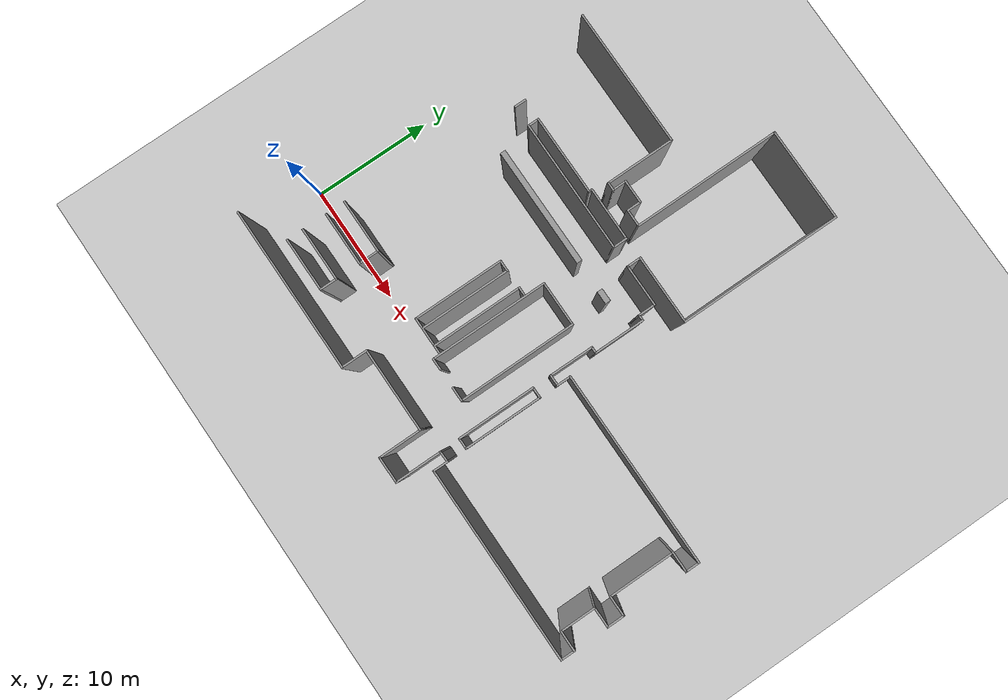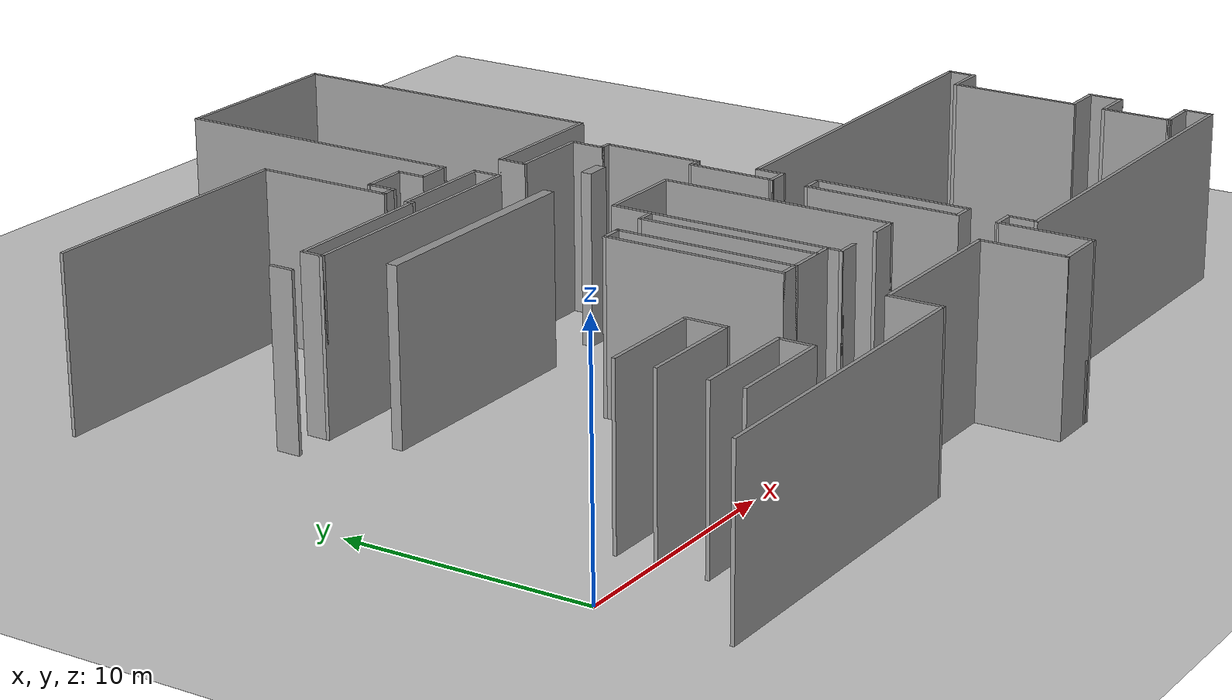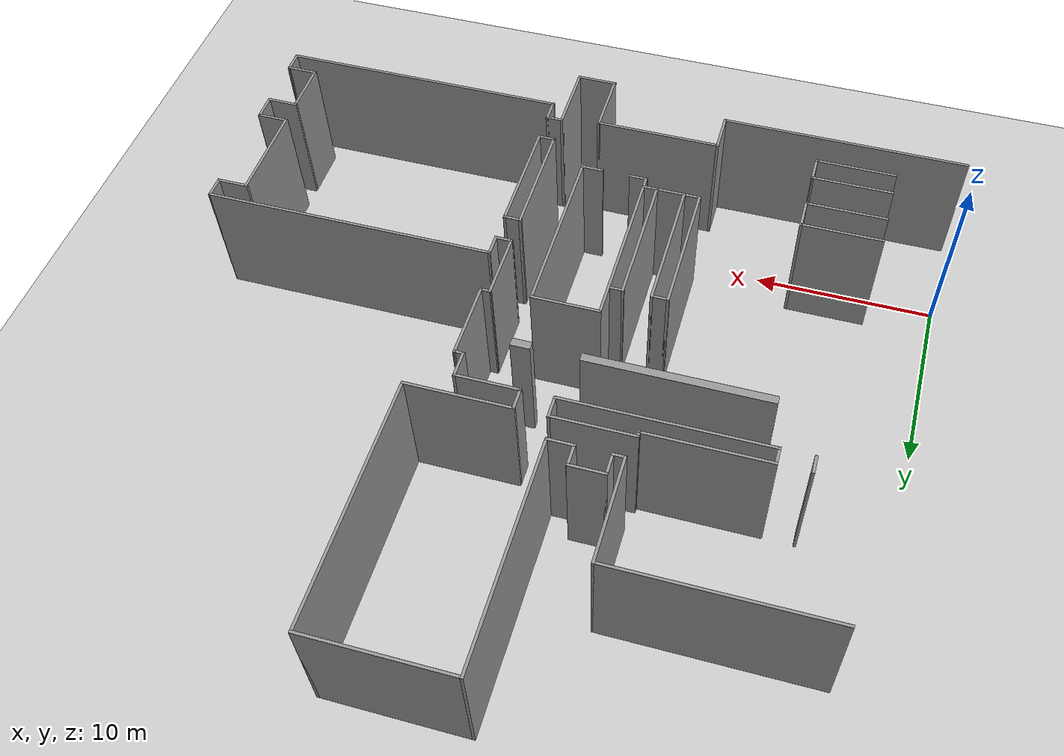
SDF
<sdf version="1.6">
 <world name="default">
  <model name="ground_plane">
   <static>1</static>
   <link name="link">
    <collision name="collision">
     <geometry><plane><normal>0 0 1</normal><size>100 100</size></plane></geometry>
     <surface>
      <contact><collide_bitmask>65535</collide_bitmask></contact>
      <friction><ode><mu>100</mu><mu2>50</mu2></ode></friction>
     </surface>
    </collision>
    <visual name="visual">
     <cast_shadows>0</cast_shadows>
     <geometry><plane><normal>0 0 1</normal><size>100 100</size></plane></geometry>
     <material>
      <script><uri>file://media/materials/scripts/gazebo.material</uri><name>Gazebo/Grey</name></script>
     </material>
    </visual>
   </link>
  </model>
  <model name="mmca">
   <pose>0.137385 4.31033 0 0 -0 0</pose>
   <link name="Wall_120">
    <collision name="Wall_120_Collision">
     <geometry><box><size>4.5 0.15 7</size></box></geometry>
     <pose>0 0 3.5 0 -0 0</pose>
    </collision>
    <visual name="Wall_120_Visual">
     <pose>0 0 3.5 0 -0 0</pose>
     <geometry><box><size>4.5 0.15 7</size></box></geometry>
     <material>
      <script><uri>file://media/materials/scripts/gazebo.material</uri><name>Gazebo/Grey</name></script>
      <ambient>1 1 1 1</ambient>
     </material>
     <meta><layer>0</layer></meta>
    </visual>
    <pose>5.7525 -4.3445 0 0 -0 0</pose>
   </link>
   <link name="Wall_121">
    <collision name="Wall_121_Collision">
     <geometry><box><size>1.75 0.15 7</size></box></geometry>
     <pose>0 0 3.5 0 -0 0</pose>
    </collision>
    <visual name="Wall_121_Visual">
     <pose>0 0 3.5 0 -0 0</pose>
     <geometry><box><size>1.75 0.15 7</size></box></geometry>
     <material>
      <script><uri>file://media/materials/scripts/gazebo.material</uri><name>Gazebo/Grey</name></script>
      <ambient>1 1 1 1</ambient>
     </material>
     <meta><layer>0</layer></meta>
    </visual>
    <pose>7.9275 -3.5445 0 0 -0 1.5708</pose>
   </link>
   <link name="Wall_122">
    <collision name="Wall_122_Collision">
     <geometry><box><size>4.5 0.15 7</size></box></geometry>
     <pose>0 0 3.5 0 -0 0</pose>
    </collision>
    <visual name="Wall_122_Visual">
     <pose>0 0 3.5 0 -0 0</pose>
     <geometry><box><size>4.5 0.15 7</size></box></geometry>
     <material>
      <script><uri>file://media/materials/scripts/gazebo.material</uri><name>Gazebo/Grey</name></script>
      <ambient>1 1 1 1</ambient>
     </material>
     <meta><layer>0</layer></meta>
    </visual>
    <pose>5.7525 -2.7445 0 0 -0 3.14159</pose>
   </link>
   <link name="Wall_124">
    <collision name="Wall_124_Collision">
     <geometry><box><size>4.5 0.15 7</size></box></geometry>
     <pose>0 0 3.5 0 -0 0</pose>
    </collision>
    <visual name="Wall_124_Visual">
     <pose>0 0 3.5 0 -0 0</pose>
     <geometry><box><size>4.5 0.15 7</size></box></geometry>
     <material>
      <script><uri>file://media/materials/scripts/gazebo.material</uri><name>Gazebo/Grey</name></script>
      <ambient>1 1 1 1</ambient>
     </material>
     <meta><layer>0</layer></meta>
    </visual>
    <pose>5.7375 -6.3445 0 0 -0 0</pose>
   </link>
   <link name="Wall_125">
    <collision name="Wall_125_Collision">
     <geometry><box><size>1.5 0.15 7</size></box></geometry>
     <pose>0 0 3.5 0 -0 0</pose>
    </collision>
    <visual name="Wall_125_Visual">
     <pose>0 0 3.5 0 -0 0</pose>
     <geometry><box><size>1.5 0.15 7</size></box></geometry>
     <material>
      <script><uri>file://media/materials/scripts/gazebo.material</uri><name>Gazebo/Grey</name></script>
      <ambient>1 1 1 1</ambient>
     </material>
     <meta><layer>0</layer></meta>
    </visual>
    <pose>7.9125 -7.0195 0 0 -0 -1.5708</pose>
   </link>
   <link name="Wall_126">
    <collision name="Wall_126_Collision">
     <geometry><box><size>4.5 0.15 7</size></box></geometry>
     <pose>0 0 3.5 0 -0 0</pose>
    </collision>
    <visual name="Wall_126_Visual">
     <pose>0 0 3.5 0 -0 0</pose>
     <geometry><box><size>4.5 0.15 7</size></box></geometry>
     <material>
      <script><uri>file://media/materials/scripts/gazebo.material</uri><name>Gazebo/Grey</name></script>
      <ambient>1 1 1 1</ambient>
     </material>
     <meta><layer>0</layer></meta>
    </visual>
    <pose>5.7375 -7.6945 0 0 -0 3.14159</pose>
   </link>
   <link name="Wall_133">
    <collision name="Wall_133_Collision">
     <geometry><box><size>9.80032 0.45 7</size></box></geometry>
     <pose>0 0 3.5 0 -0 0</pose>
    </collision>
    <visual name="Wall_133_Visual">
     <pose>0 0 3.5 0 -0 0</pose>
     <geometry><box><size>9.80032 0.45 7</size></box></geometry>
     <material>
      <script><uri>file://media/materials/scripts/gazebo.material</uri><name>Gazebo/Grey</name></script>
      <ambient>1 1 1 1</ambient>
     </material>
     <meta><layer>0</layer></meta>
    </visual>
    <pose>11.9185 8.7625 0 0 -0 0</pose>
   </link>
   <link name="Wall_135">
    <collision name="Wall_135_Collision">
     <geometry><box><size>1.05 0.45 7</size></box></geometry>
     <pose>0 0 3.5 0 -0 0</pose>
    </collision>
    <visual name="Wall_135_Visual">
     <pose>0 0 3.5 0 -0 0</pose>
     <geometry><box><size>1.05 0.45 7</size></box></geometry>
     <material>
      <script><uri>file://media/materials/scripts/gazebo.material</uri><name>Gazebo/Grey</name></script>
      <ambient>1 1 1 1</ambient>
     </material>
     <meta><layer>0</layer></meta>
    </visual>
    <pose>19.8635 8.7725 0 0 -0 0</pose>
   </link>
   <link name="Wall_148">
    <collision name="Wall_148_Collision">
     <geometry><box><size>1 0.15 7</size></box></geometry>
     <pose>0 0 3.5 0 -0 0</pose>
    </collision>
    <visual name="Wall_148_Visual">
     <pose>0 0 3.5 0 -0 0</pose>
     <geometry><box><size>1 0.15 7</size></box></geometry>
     <material>
      <script><uri>file://media/materials/scripts/gazebo.material</uri><name>Gazebo/Grey</name></script>
      <ambient>1 1 1 1</ambient>
     </material>
     <meta><layer>0</layer></meta>
    </visual>
    <pose>22.8155 -7.0925 0 0 -0 0</pose>
   </link>
   <link name="Wall_149">
    <collision name="Wall_149_Collision">
     <geometry><box><size>1.25 0.15 7</size></box></geometry>
     <pose>0 0 3.5 0 -0 0</pose>
    </collision>
    <visual name="Wall_149_Visual">
     <pose>0 0 3.5 0 -0 0</pose>
     <geometry><box><size>1.25 0.15 7</size></box></geometry>
     <material>
      <script><uri>file://media/materials/scripts/gazebo.material</uri><name>Gazebo/Grey</name></script>
      <ambient>1 1 1 1</ambient>
     </material>
     <meta><layer>0</layer></meta>
    </visual>
    <pose>23.2405 -7.6425 0 0 -0 -1.5708</pose>
   </link>
   <link name="Wall_152">
    <collision name="Wall_152_Collision">
     <geometry><box><size>1 0.15 7</size></box></geometry>
     <pose>0 0 3.5 0 -0 0</pose>
    </collision>
    <visual name="Wall_152_Visual">
     <pose>0 0 3.5 0 -0 0</pose>
     <geometry><box><size>1 0.15 7</size></box></geometry>
     <material>
      <script><uri>file://media/materials/scripts/gazebo.material</uri><name>Gazebo/Grey</name></script>
      <ambient>1 1 1 1</ambient>
     </material>
     <meta><layer>0</layer></meta>
    </visual>
    <pose>22.8035 -5.4755 0 0 -0 0</pose>
   </link>
   <link name="Wall_154">
    <collision name="Wall_154_Collision">
     <geometry><box><size>6.5 0.15 7</size></box></geometry>
     <pose>0 0 3.5 0 -0 0</pose>
    </collision>
    <visual name="Wall_154_Visual">
     <pose>0 0 3.5 0 -0 0</pose>
     <geometry><box><size>6.5 0.15 7</size></box></geometry>
     <material>
      <script><uri>file://media/materials/scripts/gazebo.material</uri><name>Gazebo/Grey</name></script>
      <ambient>1 1 1 1</ambient>
     </material>
     <meta><layer>0</layer></meta>
    </visual>
    <pose>23.2285 -2.3005 0 0 -0 1.5708</pose>
   </link>
   <link name="Wall_155">
    <collision name="Wall_155_Collision">
     <geometry><box><size>1 0.15 7</size></box></geometry>
     <pose>0 0 3.5 0 -0 0</pose>
    </collision>
    <visual name="Wall_155_Visual">
     <pose>0 0 3.5 0 -0 0</pose>
     <geometry><box><size>1 0.15 7</size></box></geometry>
     <material>
      <script><uri>file://media/materials/scripts/gazebo.material</uri><name>Gazebo/Grey</name></script>
      <ambient>1 1 1 1</ambient>
     </material>
     <meta><layer>0</layer></meta>
    </visual>
    <pose>22.8035 0.874499 0 0 -0 3.14159</pose>
   </link>
   <link name="Wall_157">
    <collision name="Wall_157_Collision">
     <geometry><box><size>1 0.15 7</size></box></geometry>
     <pose>0 0 3.5 0 -0 0</pose>
    </collision>
    <visual name="Wall_157_Visual">
     <pose>0 0 3.5 0 -0 0</pose>
     <geometry><box><size>1 0.15 7</size></box></geometry>
     <material>
      <script><uri>file://media/materials/scripts/gazebo.material</uri><name>Gazebo/Grey</name></script>
      <ambient>1 1 1 1</ambient>
     </material>
     <meta><layer>0</layer></meta>
    </visual>
    <pose>22.8015 2.4075 0 0 -0 0</pose>
   </link>
   <link name="Wall_161">
    <collision name="Wall_161_Collision">
     <geometry><box><size>1.75 0.15 7</size></box></geometry>
     <pose>0 0 3.5 0 -0 0</pose>
    </collision>
    <visual name="Wall_161_Visual">
     <pose>0 0 3.5 0 -0 0</pose>
     <geometry><box><size>1.75 0.15 7</size></box></geometry>
     <material>
      <script><uri>file://media/materials/scripts/gazebo.material</uri><name>Gazebo/Grey</name></script>
      <ambient>1 1 1 1</ambient>
     </material>
     <meta><layer>0</layer></meta>
    </visual>
    <pose>38.2765 2.4075 0 0 -0 3.14159</pose>
   </link>
   <link name="Wall_162">
    <collision name="Wall_162_Collision">
     <geometry><box><size>5.5 0.15 7</size></box></geometry>
     <pose>0 0 3.5 0 -0 0</pose>
    </collision>
    <visual name="Wall_162_Visual">
     <pose>0 0 3.5 0 -0 0</pose>
     <geometry><box><size>5.5 0.15 7</size></box></geometry>
     <material>
      <script><uri>file://media/materials/scripts/gazebo.material</uri><name>Gazebo/Grey</name></script>
      <ambient>1 1 1 1</ambient>
     </material>
     <meta><layer>0</layer></meta>
    </visual>
    <pose>37.4765 -0.267501 0 0 -0 -1.5708</pose>
   </link>
   <link name="Wall_163">
    <collision name="Wall_163_Collision">
     <geometry><box><size>1.75 0.15 7</size></box></geometry>
     <pose>0 0 3.5 0 -0 0</pose>
    </collision>
    <visual name="Wall_163_Visual">
     <pose>0 0 3.5 0 -0 0</pose>
     <geometry><box><size>1.75 0.15 7</size></box></geometry>
     <material>
      <script><uri>file://media/materials/scripts/gazebo.material</uri><name>Gazebo/Grey</name></script>
      <ambient>1 1 1 1</ambient>
     </material>
     <meta><layer>0</layer></meta>
    </visual>
    <pose>38.2765 -2.9425 0 0 -0 0</pose>
   </link>
   <link name="Wall_164">
    <collision name="Wall_164_Collision">
     <geometry><box><size>1.5 0.15 7</size></box></geometry>
     <pose>0 0 3.5 0 -0 0</pose>
    </collision>
    <visual name="Wall_164_Visual">
     <pose>0 0 3.5 0 -0 0</pose>
     <geometry><box><size>1.5 0.15 7</size></box></geometry>
     <material>
      <script><uri>file://media/materials/scripts/gazebo.material</uri><name>Gazebo/Grey</name></script>
      <ambient>1 1 1 1</ambient>
     </material>
     <meta><layer>0</layer></meta>
    </visual>
    <pose>39.0765 -3.6175 0 0 -0 -1.5708</pose>
   </link>
   <link name="Wall_165">
    <collision name="Wall_165_Collision">
     <geometry><box><size>1.75 0.15 7</size></box></geometry>
     <pose>0 0 3.5 0 -0 0</pose>
    </collision>
    <visual name="Wall_165_Visual">
     <pose>0 0 3.5 0 -0 0</pose>
     <geometry><box><size>1.75 0.15 7</size></box></geometry>
     <material>
      <script><uri>file://media/materials/scripts/gazebo.material</uri><name>Gazebo/Grey</name></script>
      <ambient>1 1 1 1</ambient>
     </material>
     <meta><layer>0</layer></meta>
    </visual>
    <pose>38.2765 -4.2925 0 0 -0 3.14159</pose>
   </link>
   <link name="Wall_166">
    <collision name="Wall_166_Collision">
     <geometry><box><size>3 0.15 7</size></box></geometry>
     <pose>0 0 3.5 0 -0 0</pose>
    </collision>
    <visual name="Wall_166_Visual">
     <pose>0 0 3.5 0 -0 0</pose>
     <geometry><box><size>3 0.15 7</size></box></geometry>
     <material>
      <script><uri>file://media/materials/scripts/gazebo.material</uri><name>Gazebo/Grey</name></script>
      <ambient>1 1 1 1</ambient>
     </material>
     <meta><layer>0</layer></meta>
    </visual>
    <pose>37.4765 -5.7175 0 0 -0 -1.5708</pose>
   </link>
   <link name="Wall_167">
    <collision name="Wall_167_Collision">
     <geometry><box><size>1.75 0.15 7</size></box></geometry>
     <pose>0 0 3.5 0 -0 0</pose>
    </collision>
    <visual name="Wall_167_Visual">
     <pose>0 0 3.5 0 -0 0</pose>
     <geometry><box><size>1.75 0.15 7</size></box></geometry>
     <material>
      <script><uri>file://media/materials/scripts/gazebo.material</uri><name>Gazebo/Grey</name></script>
      <ambient>1 1 1 1</ambient>
     </material>
     <meta><layer>0</layer></meta>
    </visual>
    <pose>38.2765 -7.1425 0 0 -0 0</pose>
   </link>
   <link name="Wall_168">
    <collision name="Wall_168_Collision">
     <geometry><box><size>1.25 0.15 7</size></box></geometry>
     <pose>0 0 3.5 0 -0 0</pose>
    </collision>
    <visual name="Wall_168_Visual">
     <pose>0 0 3.5 0 -0 0</pose>
     <geometry><box><size>1.25 0.15 7</size></box></geometry>
     <material>
      <script><uri>file://media/materials/scripts/gazebo.material</uri><name>Gazebo/Grey</name></script>
      <ambient>1 1 1 1</ambient>
     </material>
     <meta><layer>0</layer></meta>
    </visual>
    <pose>39.0765 -7.6925 0 0 -0 -1.5708</pose>
   </link>
   <link name="Wall_169">
    <collision name="Wall_169_Collision">
     <geometry><box><size>16 0.15 7</size></box></geometry>
     <pose>0 0 3.5 0 -0 0</pose>
    </collision>
    <visual name="Wall_169_Visual">
     <pose>0 0 3.5 0 -0 0</pose>
     <geometry><box><size>16 0.15 7</size></box></geometry>
     <material>
      <script><uri>file://media/materials/scripts/gazebo.material</uri><name>Gazebo/Grey</name></script>
      <ambient>1 1 1 1</ambient>
     </material>
     <meta><layer>0</layer></meta>
    </visual>
    <pose>31.1515 -8.2425 0 0 -0 3.14159</pose>
   </link>
   <link name="Wall_172">
    <collision name="Wall_172_Collision">
     <geometry><box><size>6.5 0.15 7</size></box></geometry>
     <pose>0 0 3.5 0 -0 0</pose>
    </collision>
    <visual name="Wall_172_Visual">
     <pose>0 0 3.5 0 -0 0</pose>
     <geometry><box><size>6.5 0.15 7</size></box></geometry>
     <material>
      <script><uri>file://media/materials/scripts/gazebo.material</uri><name>Gazebo/Grey</name></script>
      <ambient>1 1 1 1</ambient>
     </material>
     <meta><layer>0</layer></meta>
    </visual>
    <pose>22.3785 -2.3005 0 0 -0 -1.5708</pose>
   </link>
   <link name="Wall_174">
    <collision name="Wall_174_Collision">
     <geometry><box><size>3.93426 0.15 7</size></box></geometry>
     <pose>0 0 3.5 0 -0 0</pose>
    </collision>
    <visual name="Wall_174_Visual">
     <pose>0 0 3.5 0 -0 0</pose>
     <geometry><box><size>3.93426 0.15 7</size></box></geometry>
     <material>
      <script><uri>file://media/materials/scripts/gazebo.material</uri><name>Gazebo/Grey</name></script>
      <ambient>1 1 1 1</ambient>
     </material>
     <meta><layer>0</layer></meta>
    </visual>
    <pose>22.391 -8.9845 0 0 -0 -1.57053</pose>
   </link>
   <link name="Wall_176">
    <collision name="Wall_176_Collision">
     <geometry><box><size>3.71588 0.15 7</size></box></geometry>
     <pose>0 0 3.5 0 -0 0</pose>
    </collision>
    <visual name="Wall_176_Visual">
     <pose>0 0 3.5 0 -0 0</pose>
     <geometry><box><size>3.71588 0.15 7</size></box></geometry>
     <material>
      <script><uri>file://media/materials/scripts/gazebo.material</uri><name>Gazebo/Grey</name></script>
      <ambient>1 1 1 1</ambient>
     </material>
     <meta><layer>0</layer></meta>
    </visual>
    <pose>22.384 4.1905 0 0 -0 -1.575</pose>
   </link>
   <link name="Wall_178">
    <collision name="Wall_178_Collision">
     <geometry><box><size>1.25 0.15 7</size></box></geometry>
     <pose>0 0 3.5 0 -0 0</pose>
    </collision>
    <visual name="Wall_178_Visual">
     <pose>0 0 3.5 0 -0 0</pose>
     <geometry><box><size>1.25 0.15 7</size></box></geometry>
     <material>
      <script><uri>file://media/materials/scripts/gazebo.material</uri><name>Gazebo/Grey</name></script>
      <ambient>1 1 1 1</ambient>
     </material>
     <meta><layer>0</layer></meta>
    </visual>
    <pose>23.2265 2.9575 0 0 -0 1.5708</pose>
   </link>
   <link name="Wall_179">
    <collision name="Wall_179_Collision">
     <geometry><box><size>16 0.15 7</size></box></geometry>
     <pose>0 0 3.5 0 -0 0</pose>
    </collision>
    <visual name="Wall_179_Visual">
     <pose>0 0 3.5 0 -0 0</pose>
     <geometry><box><size>16 0.15 7</size></box></geometry>
     <material>
      <script><uri>file://media/materials/scripts/gazebo.material</uri><name>Gazebo/Grey</name></script>
      <ambient>1 1 1 1</ambient>
     </material>
     <meta><layer>0</layer></meta>
    </visual>
    <pose>31.1515 3.5075 0 0 -0 0</pose>
   </link>
   <link name="Wall_180">
    <collision name="Wall_180_Collision">
     <geometry><box><size>1.25 0.15 7</size></box></geometry>
     <pose>0 0 3.5 0 -0 0</pose>
    </collision>
    <visual name="Wall_180_Visual">
     <pose>0 0 3.5 0 -0 0</pose>
     <geometry><box><size>1.25 0.15 7</size></box></geometry>
     <material>
      <script><uri>file://media/materials/scripts/gazebo.material</uri><name>Gazebo/Grey</name></script>
      <ambient>1 1 1 1</ambient>
     </material>
     <meta><layer>0</layer></meta>
    </visual>
    <pose>39.0765 2.9575 0 0 -0 -1.5708</pose>
   </link>
   <link name="Wall_184">
    <collision name="Wall_184_Collision">
     <geometry><box><size>1 0.15 7</size></box></geometry>
     <pose>0 0 3.5 0 -0 0</pose>
    </collision>
    <visual name="Wall_184_Visual">
     <pose>0 0 3.5 0 -0 0</pose>
     <geometry><box><size>1 0.15 7</size></box></geometry>
     <material>
      <script><uri>file://media/materials/scripts/gazebo.material</uri><name>Gazebo/Grey</name></script>
      <ambient>1 1 1 1</ambient>
     </material>
     <meta><layer>0</layer></meta>
    </visual>
    <pose>4.7735 11.8515 0 0 -0 1.5708</pose>
   </link>
   <link name="Wall_187">
    <collision name="Wall_187_Collision">
     <geometry><box><size>11.5 0.15 7</size></box></geometry>
     <pose>0 0 3.5 0 -0 0</pose>
    </collision>
    <visual name="Wall_187_Visual">
     <pose>0 0 3.5 0 -0 0</pose>
     <geometry><box><size>11.5 0.15 7</size></box></geometry>
     <material>
      <script><uri>file://media/materials/scripts/gazebo.material</uri><name>Gazebo/Grey</name></script>
      <ambient>1 1 1 1</ambient>
     </material>
     <meta><layer>0</layer></meta>
    </visual>
    <pose>7.5985 19.3765 0 0 -0 0</pose>
   </link>
   <link name="Wall_188">
    <collision name="Wall_188_Collision">
     <geometry><box><size>5.75 0.15 7</size></box></geometry>
     <pose>0 0 3.5 0 -0 0</pose>
    </collision>
    <visual name="Wall_188_Visual">
     <pose>0 0 3.5 0 -0 0</pose>
     <geometry><box><size>5.75 0.15 7</size></box></geometry>
     <material>
      <script><uri>file://media/materials/scripts/gazebo.material</uri><name>Gazebo/Grey</name></script>
      <ambient>1 1 1 1</ambient>
     </material>
     <meta><layer>0</layer></meta>
    </visual>
    <pose>13.2735 16.5765 0 0 -0 -1.5708</pose>
   </link>
   <link name="Wall_189">
    <collision name="Wall_189_Collision">
     <geometry><box><size>0.75 0.15 7</size></box></geometry>
     <pose>0 0 3.5 0 -0 0</pose>
    </collision>
    <visual name="Wall_189_Visual">
     <pose>0 0 3.5 0 -0 0</pose>
     <geometry><box><size>0.75 0.15 7</size></box></geometry>
     <material>
      <script><uri>file://media/materials/scripts/gazebo.material</uri><name>Gazebo/Grey</name></script>
      <ambient>1 1 1 1</ambient>
     </material>
     <meta><layer>0</layer></meta>
    </visual>
    <pose>13.5735 13.7765 0 0 -0 0</pose>
   </link>
   <link name="Wall_190">
    <collision name="Wall_190_Collision">
     <geometry><box><size>1.25 0.15 7</size></box></geometry>
     <pose>0 0 3.5 0 -0 0</pose>
    </collision>
    <visual name="Wall_190_Visual">
     <pose>0 0 3.5 0 -0 0</pose>
     <geometry><box><size>1.25 0.15 7</size></box></geometry>
     <material>
      <script><uri>file://media/materials/scripts/gazebo.material</uri><name>Gazebo/Grey</name></script>
      <ambient>1 1 1 1</ambient>
     </material>
     <meta><layer>0</layer></meta>
    </visual>
    <pose>13.8735 14.3265 0 0 -0 1.5708</pose>
   </link>
   <link name="Wall_191">
    <collision name="Wall_191_Collision">
     <geometry><box><size>2 0.15 7</size></box></geometry>
     <pose>0 0 3.5 0 -0 0</pose>
    </collision>
    <visual name="Wall_191_Visual">
     <pose>0 0 3.5 0 -0 0</pose>
     <geometry><box><size>2 0.15 7</size></box></geometry>
     <material>
      <script><uri>file://media/materials/scripts/gazebo.material</uri><name>Gazebo/Grey</name></script>
      <ambient>1 1 1 1</ambient>
     </material>
     <meta><layer>0</layer></meta>
    </visual>
    <pose>14.7985 14.8765 0 0 -0 0</pose>
   </link>
   <link name="Wall_192">
    <collision name="Wall_192_Collision">
     <geometry><box><size>1.25 0.15 7</size></box></geometry>
     <pose>0 0 3.5 0 -0 0</pose>
    </collision>
    <visual name="Wall_192_Visual">
     <pose>0 0 3.5 0 -0 0</pose>
     <geometry><box><size>1.25 0.15 7</size></box></geometry>
     <material>
      <script><uri>file://media/materials/scripts/gazebo.material</uri><name>Gazebo/Grey</name></script>
      <ambient>1 1 1 1</ambient>
     </material>
     <meta><layer>0</layer></meta>
    </visual>
    <pose>15.7235 14.3265 0 0 -0 -1.5708</pose>
   </link>
   <link name="Wall_193">
    <collision name="Wall_193_Collision">
     <geometry><box><size>1.5 0.15 7</size></box></geometry>
     <pose>0 0 3.5 0 -0 0</pose>
    </collision>
    <visual name="Wall_193_Visual">
     <pose>0 0 3.5 0 -0 0</pose>
     <geometry><box><size>1.5 0.15 7</size></box></geometry>
     <material>
      <script><uri>file://media/materials/scripts/gazebo.material</uri><name>Gazebo/Grey</name></script>
      <ambient>1 1 1 1</ambient>
     </material>
     <meta><layer>0</layer></meta>
    </visual>
    <pose>16.3985 13.7765 0 0 -0 0</pose>
   </link>
   <link name="Wall_194">
    <collision name="Wall_194_Collision">
     <geometry><box><size>12.25 0.15 7</size></box></geometry>
     <pose>0 0 3.5 0 -0 0</pose>
    </collision>
    <visual name="Wall_194_Visual">
     <pose>0 0 3.5 0 -0 0</pose>
     <geometry><box><size>12.25 0.15 7</size></box></geometry>
     <material>
      <script><uri>file://media/materials/scripts/gazebo.material</uri><name>Gazebo/Grey</name></script>
      <ambient>1 1 1 1</ambient>
     </material>
     <meta><layer>0</layer></meta>
    </visual>
    <pose>17.0735 19.8265 0 0 -0 1.5708</pose>
   </link>
   <link name="Wall_195">
    <collision name="Wall_195_Collision">
     <geometry><box><size>7.75 0.15 7</size></box></geometry>
     <pose>0 0 3.5 0 -0 0</pose>
    </collision>
    <visual name="Wall_195_Visual">
     <pose>0 0 3.5 0 -0 0</pose>
     <geometry><box><size>7.75 0.15 7</size></box></geometry>
     <material>
      <script><uri>file://media/materials/scripts/gazebo.material</uri><name>Gazebo/Grey</name></script>
      <ambient>1 1 1 1</ambient>
     </material>
     <meta><layer>0</layer></meta>
    </visual>
    <pose>20.8735 25.8765 0 0 -0 0</pose>
   </link>
   <link name="Wall_196">
    <collision name="Wall_196_Collision">
     <geometry><box><size>13.5 0.15 7</size></box></geometry>
     <pose>0 0 3.5 0 -0 0</pose>
    </collision>
    <visual name="Wall_196_Visual">
     <pose>0 0 3.5 0 -0 0</pose>
     <geometry><box><size>13.5 0.15 7</size></box></geometry>
     <material>
      <script><uri>file://media/materials/scripts/gazebo.material</uri><name>Gazebo/Grey</name></script>
      <ambient>1 1 1 1</ambient>
     </material>
     <meta><layer>0</layer></meta>
    </visual>
    <pose>24.6735 19.2015 0 0 -0 -1.5708</pose>
   </link>
   <link name="Wall_197">
    <collision name="Wall_197_Collision">
     <geometry><box><size>5.75 0.15 7</size></box></geometry>
     <pose>0 0 3.5 0 -0 0</pose>
    </collision>
    <visual name="Wall_197_Visual">
     <pose>0 0 3.5 0 -0 0</pose>
     <geometry><box><size>5.75 0.15 7</size></box></geometry>
     <material>
      <script><uri>file://media/materials/scripts/gazebo.material</uri><name>Gazebo/Grey</name></script>
      <ambient>1 1 1 1</ambient>
     </material>
     <meta><layer>0</layer></meta>
    </visual>
    <pose>21.8735 12.5265 0 0 -0 3.14159</pose>
   </link>
   <link name="Wall_198">
    <collision name="Wall_198_Collision">
     <geometry><box><size>1.25 0.15 7</size></box></geometry>
     <pose>0 0 3.5 0 -0 0</pose>
    </collision>
    <visual name="Wall_198_Visual">
     <pose>0 0 3.5 0 -0 0</pose>
     <geometry><box><size>1.25 0.15 7</size></box></geometry>
     <material>
      <script><uri>file://media/materials/scripts/gazebo.material</uri><name>Gazebo/Grey</name></script>
      <ambient>1 1 1 1</ambient>
     </material>
     <meta><layer>0</layer></meta>
    </visual>
    <pose>19.0735 11.9765 0 0 -0 -1.5708</pose>
   </link>
   <link name="Wall_199">
    <collision name="Wall_199_Collision">
     <geometry><box><size>3.5 0.15 7</size></box></geometry>
     <pose>0 0 3.5 0 -0 0</pose>
    </collision>
    <visual name="Wall_199_Visual">
     <pose>0 0 3.5 0 -0 0</pose>
     <geometry><box><size>3.5 0.15 7</size></box></geometry>
     <material>
      <script><uri>file://media/materials/scripts/gazebo.material</uri><name>Gazebo/Grey</name></script>
      <ambient>1 1 1 1</ambient>
     </material>
     <meta><layer>0</layer></meta>
    </visual>
    <pose>20.7485 11.4265 0 0 -0 0</pose>
   </link>
   <link name="Wall_202">
    <collision name="Wall_202_Collision">
     <geometry><box><size>11 0.15 7</size></box></geometry>
     <pose>0 0 3.5 0 -0 0</pose>
    </collision>
    <visual name="Wall_202_Visual">
     <pose>0 0 3.5 0 -0 0</pose>
     <geometry><box><size>11 0.15 7</size></box></geometry>
     <material>
      <script><uri>file://media/materials/scripts/gazebo.material</uri><name>Gazebo/Grey</name></script>
      <ambient>1 1 1 1</ambient>
     </material>
     <meta><layer>0</layer></meta>
    </visual>
    <pose>11.9225 11.4155 0 0 -0 0</pose>
   </link>
   <link name="Wall_203">
    <collision name="Wall_203_Collision">
     <geometry><box><size>1.25 0.15 7</size></box></geometry>
     <pose>0 0 3.5 0 -0 0</pose>
    </collision>
    <visual name="Wall_203_Visual">
     <pose>0 0 3.5 0 -0 0</pose>
     <geometry><box><size>1.25 0.15 7</size></box></geometry>
     <material>
      <script><uri>file://media/materials/scripts/gazebo.material</uri><name>Gazebo/Grey</name></script>
      <ambient>1 1 1 1</ambient>
     </material>
     <meta><layer>0</layer></meta>
    </visual>
    <pose>17.3475 11.9655 0 0 -0 1.5708</pose>
   </link>
   <link name="Wall_206">
    <collision name="Wall_206_Collision">
     <geometry><box><size>1 0.15 7</size></box></geometry>
     <pose>0 0 3.5 0 -0 0</pose>
    </collision>
    <visual name="Wall_206_Visual">
     <pose>0 0 3.5 0 -0 0</pose>
     <geometry><box><size>1 0.15 7</size></box></geometry>
     <material>
      <script><uri>file://media/materials/scripts/gazebo.material</uri><name>Gazebo/Grey</name></script>
      <ambient>1 1 1 1</ambient>
     </material>
     <meta><layer>0</layer></meta>
    </visual>
    <pose>6.4975 11.8405 0 0 -0 1.5708</pose>
   </link>
   <link name="Wall_209">
    <collision name="Wall_209_Collision">
     <geometry><box><size>6.64857 0.15 7</size></box></geometry>
     <pose>0 0 3.5 0 -0 0</pose>
    </collision>
    <visual name="Wall_209_Visual">
     <pose>0 0 3.5 0 -0 0</pose>
     <geometry><box><size>6.64857 0.15 7</size></box></geometry>
     <material>
      <script><uri>file://media/materials/scripts/gazebo.material</uri><name>Gazebo/Grey</name></script>
      <ambient>1 1 1 1</ambient>
     </material>
     <meta><layer>0</layer></meta>
    </visual>
    <pose>9.747 12.2655 0 0 -0 0</pose>
   </link>
   <link name="Wall_211">
    <collision name="Wall_211_Collision">
     <geometry><box><size>0.275494 0.15 7</size></box></geometry>
     <pose>0 0 3.5 0 -0 0</pose>
    </collision>
    <visual name="Wall_211_Visual">
     <pose>0 0 3.5 0 -0 0</pose>
     <geometry><box><size>0.275494 0.15 7</size></box></geometry>
     <material>
      <script><uri>file://media/materials/scripts/gazebo.material</uri><name>Gazebo/Grey</name></script>
      <ambient>1 1 1 1</ambient>
     </material>
     <meta><layer>0</layer></meta>
    </visual>
    <pose>12.9965 12.328 0 0 -0 1.5708</pose>
   </link>
   <link name="Wall_213">
    <collision name="Wall_213_Collision">
     <geometry><box><size>4.5 0.15 7</size></box></geometry>
     <pose>0 0 3.5 0 -0 0</pose>
    </collision>
    <visual name="Wall_213_Visual">
     <pose>0 0 3.5 0 -0 0</pose>
     <geometry><box><size>4.5 0.15 7</size></box></geometry>
     <material>
      <script><uri>file://media/materials/scripts/gazebo.material</uri><name>Gazebo/Grey</name></script>
      <ambient>1 1 1 1</ambient>
     </material>
     <meta><layer>0</layer></meta>
    </visual>
    <pose>15.1725 12.5155 0 0 -0 3.14159</pose>
   </link>
   <link name="Wall_218">
    <collision name="Wall_218_Collision">
     <geometry><box><size>4.25 0.15 7</size></box></geometry>
     <pose>0 0 3.5 0 -0 0</pose>
    </collision>
    <visual name="Wall_218_Visual">
     <pose>0 0 3.5 0 -0 0</pose>
     <geometry><box><size>4.25 0.15 7</size></box></geometry>
     <material>
      <script><uri>file://media/materials/scripts/gazebo.material</uri><name>Gazebo/Grey</name></script>
      <ambient>1 1 1 1</ambient>
     </material>
     <meta><layer>0</layer></meta>
    </visual>
    <pose>22.8735 8.0265 0 0 -0 1.5708</pose>
   </link>
   <link name="Wall_223">
    <collision name="Wall_223_Collision">
     <geometry><box><size>1.5 0.15 7</size></box></geometry>
     <pose>0 0 3.5 0 -0 0</pose>
    </collision>
    <visual name="Wall_223_Visual">
     <pose>0 0 3.5 0 -0 0</pose>
     <geometry><box><size>1.5 0.15 7</size></box></geometry>
     <material>
      <script><uri>file://media/materials/scripts/gazebo.material</uri><name>Gazebo/Grey</name></script>
      <ambient>1 1 1 1</ambient>
     </material>
     <meta><layer>0</layer></meta>
    </visual>
    <pose>22.4235 10.7515 0 0 -0 -1.5708</pose>
   </link>
   <link name="Wall_224">
    <collision name="Wall_224_Collision">
     <geometry><box><size>0.6 0.15 7</size></box></geometry>
     <pose>0 0 3.5 0 -0 0</pose>
    </collision>
    <visual name="Wall_224_Visual">
     <pose>0 0 3.5 0 -0 0</pose>
     <geometry><box><size>0.6 0.15 7</size></box></geometry>
     <material>
      <script><uri>file://media/materials/scripts/gazebo.material</uri><name>Gazebo/Grey</name></script>
      <ambient>1 1 1 1</ambient>
     </material>
     <meta><layer>0</layer></meta>
    </visual>
    <pose>22.6485 10.0765 0 0 -0 0</pose>
   </link>
   <link name="Wall_227">
    <collision name="Wall_227_Collision">
     <geometry><box><size>7.5 0.15 7</size></box></geometry>
     <pose>0 0 3.5 0 -0 0</pose>
    </collision>
    <visual name="Wall_227_Visual">
     <pose>0 0 3.5 0 -0 0</pose>
     <geometry><box><size>7.5 0.15 7</size></box></geometry>
     <material>
      <script><uri>file://media/materials/scripts/gazebo.material</uri><name>Gazebo/Grey</name></script>
      <ambient>1 1 1 1</ambient>
     </material>
     <meta><layer>0</layer></meta>
    </visual>
    <pose>13.5395 0.437499 0 0 -0 -1.5708</pose>
   </link>
   <link name="Wall_228">
    <collision name="Wall_228_Collision">
     <geometry><box><size>3.25 0.15 7</size></box></geometry>
     <pose>0 0 3.5 0 -0 0</pose>
    </collision>
    <visual name="Wall_228_Visual">
     <pose>0 0 3.5 0 -0 0</pose>
     <geometry><box><size>3.25 0.15 7</size></box></geometry>
     <material>
      <script><uri>file://media/materials/scripts/gazebo.material</uri><name>Gazebo/Grey</name></script>
      <ambient>1 1 1 1</ambient>
     </material>
     <meta><layer>0</layer></meta>
    </visual>
    <pose>15.0895 -3.2375 0 0 -0 0</pose>
   </link>
   <link name="Wall_230">
    <collision name="Wall_230_Collision">
     <geometry><box><size>1 0.15 7</size></box></geometry>
     <pose>0 0 3.5 0 -0 0</pose>
    </collision>
    <visual name="Wall_230_Visual">
     <pose>0 0 3.5 0 -0 0</pose>
     <geometry><box><size>1 0.15 7</size></box></geometry>
     <material>
      <script><uri>file://media/materials/scripts/gazebo.material</uri><name>Gazebo/Grey</name></script>
      <ambient>1 1 1 1</ambient>
     </material>
     <meta><layer>0</layer></meta>
    </visual>
    <pose>13.9645 4.1125 0 0 -0 0</pose>
   </link>
   <link name="Wall_231">
    <collision name="Wall_231_Collision">
     <geometry><box><size>7.5 0.15 7</size></box></geometry>
     <pose>0 0 3.5 0 -0 0</pose>
    </collision>
    <visual name="Wall_231_Visual">
     <pose>0 0 3.5 0 -0 0</pose>
     <geometry><box><size>7.5 0.15 7</size></box></geometry>
     <material>
      <script><uri>file://media/materials/scripts/gazebo.material</uri><name>Gazebo/Grey</name></script>
      <ambient>1 1 1 1</ambient>
     </material>
     <meta><layer>0</layer></meta>
    </visual>
    <pose>14.3895 0.437499 0 0 -0 -1.5708</pose>
   </link>
   <link name="Wall_238">
    <collision name="Wall_238_Collision">
     <geometry><box><size>9.75 0.15 7</size></box></geometry>
     <pose>0 0 3.5 0 -0 0</pose>
    </collision>
    <visual name="Wall_238_Visual">
     <pose>0 0 3.5 0 -0 0</pose>
     <geometry><box><size>9.75 0.15 7</size></box></geometry>
     <material>
      <script><uri>file://media/materials/scripts/gazebo.material</uri><name>Gazebo/Grey</name></script>
      <ambient>1 1 1 1</ambient>
     </material>
     <meta><layer>0</layer></meta>
    </visual>
    <pose>16.6505 0.966499 0 0 -0 1.5708</pose>
   </link>
   <link name="Wall_239">
    <collision name="Wall_239_Collision">
     <geometry><box><size>3.75 0.15 7</size></box></geometry>
     <pose>0 0 3.5 0 -0 0</pose>
    </collision>
    <visual name="Wall_239_Visual">
     <pose>0 0 3.5 0 -0 0</pose>
     <geometry><box><size>3.75 0.15 7</size></box></geometry>
     <material>
      <script><uri>file://media/materials/scripts/gazebo.material</uri><name>Gazebo/Grey</name></script>
      <ambient>1 1 1 1</ambient>
     </material>
     <meta><layer>0</layer></meta>
    </visual>
    <pose>18.4505 5.7665 0 0 -0 0</pose>
   </link>
   <link name="Wall_240">
    <collision name="Wall_240_Collision">
     <geometry><box><size>9.75 0.15 7</size></box></geometry>
     <pose>0 0 3.5 0 -0 0</pose>
    </collision>
    <visual name="Wall_240_Visual">
     <pose>0 0 3.5 0 -0 0</pose>
     <geometry><box><size>9.75 0.15 7</size></box></geometry>
     <material>
      <script><uri>file://media/materials/scripts/gazebo.material</uri><name>Gazebo/Grey</name></script>
      <ambient>1 1 1 1</ambient>
     </material>
     <meta><layer>0</layer></meta>
    </visual>
    <pose>20.2505 0.966499 0 0 -0 -1.5708</pose>
   </link>
   <link name="Wall_243">
    <collision name="Wall_243_Collision">
     <geometry><box><size>0.75 0.15 7</size></box></geometry>
     <pose>0 0 3.5 0 -0 0</pose>
    </collision>
    <visual name="Wall_243_Visual">
     <pose>0 0 3.5 0 -0 0</pose>
     <geometry><box><size>0.75 0.15 7</size></box></geometry>
     <material>
      <script><uri>file://media/materials/scripts/gazebo.material</uri><name>Gazebo/Grey</name></script>
      <ambient>1 1 1 1</ambient>
     </material>
     <meta><layer>0</layer></meta>
    </visual>
    <pose>16.2065 4.1295 0 0 -0 0</pose>
   </link>
   <link name="Wall_245">
    <collision name="Wall_245_Collision">
     <geometry><box><size>7.5 0.15 7</size></box></geometry>
     <pose>0 0 3.5 0 -0 0</pose>
    </collision>
    <visual name="Wall_245_Visual">
     <pose>0 0 3.5 0 -0 0</pose>
     <geometry><box><size>7.5 0.15 7</size></box></geometry>
     <material>
      <script><uri>file://media/materials/scripts/gazebo.material</uri><name>Gazebo/Grey</name></script>
      <ambient>1 1 1 1</ambient>
     </material>
     <meta><layer>0</layer></meta>
    </visual>
    <pose>15.9065 0.454499 0 0 -0 -1.5708</pose>
   </link>
   <link name="Wall_247">
    <collision name="Wall_247_Collision">
     <geometry><box><size>1 0.15 7</size></box></geometry>
     <pose>0 0 3.5 0 -0 0</pose>
    </collision>
    <visual name="Wall_247_Visual">
     <pose>0 0 3.5 0 -0 0</pose>
     <geometry><box><size>1 0.15 7</size></box></geometry>
     <material>
      <script><uri>file://media/materials/scripts/gazebo.material</uri><name>Gazebo/Grey</name></script>
      <ambient>1 1 1 1</ambient>
     </material>
     <meta><layer>0</layer></meta>
    </visual>
    <pose>17.0755 -3.8335 0 0 -0 0</pose>
   </link>
   <link name="Wall_249">
    <collision name="Wall_249_Collision">
     <geometry><box><size>1.25 0.15 7</size></box></geometry>
     <pose>0 0 3.5 0 -0 0</pose>
    </collision>
    <visual name="Wall_249_Visual">
     <pose>0 0 3.5 0 -0 0</pose>
     <geometry><box><size>1.25 0.15 7</size></box></geometry>
     <material>
      <script><uri>file://media/materials/scripts/gazebo.material</uri><name>Gazebo/Grey</name></script>
      <ambient>1 1 1 1</ambient>
     </material>
     <meta><layer>0</layer></meta>
    </visual>
    <pose>19.7005 -3.8335 0 0 -0 3.14159</pose>
   </link>
   <link name="Wall_27">
    <collision name="Wall_27_Collision">
     <geometry><box><size>13.75 0.15 7</size></box></geometry>
     <pose>0 0 3.5 0 -0 0</pose>
    </collision>
    <visual name="Wall_27_Visual">
     <pose>0 0 3.5 0 -0 0</pose>
     <geometry><box><size>13.75 0.15 7</size></box></geometry>
     <material>
      <script><uri>file://media/materials/scripts/gazebo.material</uri><name>Gazebo/Grey</name></script>
      <ambient>1 1 1 1</ambient>
     </material>
     <meta><layer>0</layer></meta>
    </visual>
    <pose>6.6415 -9.5265 0 0 -0 0</pose>
   </link>
   <link name="Wall_28">
    <collision name="Wall_28_Collision">
     <geometry><box><size>2.25 0.15 7</size></box></geometry>
     <pose>0 0 3.5 0 -0 0</pose>
    </collision>
    <visual name="Wall_28_Visual">
     <pose>0 0 3.5 0 -0 0</pose>
     <geometry><box><size>2.25 0.15 7</size></box></geometry>
     <material>
      <script><uri>file://media/materials/scripts/gazebo.material</uri><name>Gazebo/Grey</name></script>
      <ambient>1 1 1 1</ambient>
     </material>
     <meta><layer>0</layer></meta>
    </visual>
    <pose>13.4415 -8.4765 0 0 -0 1.5708</pose>
   </link>
   <link name="Wall_29">
    <collision name="Wall_29_Collision">
     <geometry><box><size>7 0.15 7</size></box></geometry>
     <pose>0 0 3.5 0 -0 0</pose>
    </collision>
    <visual name="Wall_29_Visual">
     <pose>0 0 3.5 0 -0 0</pose>
     <geometry><box><size>7 0.15 7</size></box></geometry>
     <material>
      <script><uri>file://media/materials/scripts/gazebo.material</uri><name>Gazebo/Grey</name></script>
      <ambient>1 1 1 1</ambient>
     </material>
     <meta><layer>0</layer></meta>
    </visual>
    <pose>16.8665 -7.4265 0 0 -0 0</pose>
   </link>
   <link name="Wall_33">
    <collision name="Wall_33_Collision">
     <geometry><box><size>0.15 0.15 2.5</size></box></geometry>
     <pose>0 0 1.25 0 -0 0</pose>
    </collision>
    <visual name="Wall_33_Visual">
     <pose>0 0 1.25 0 -0 0</pose>
     <geometry><box><size>0.15 0.15 2.5</size></box></geometry>
     <material>
      <script><uri>file://media/materials/scripts/gazebo.material</uri><name>Gazebo/Grey</name></script>
      <ambient>1 1 1 1</ambient>
     </material>
     <meta><layer>0</layer></meta>
    </visual>
    <pose>22.141 -10.8768 0 0 -0 0</pose>
   </link>
   <link name="Wall_35">
    <collision name="Wall_35_Collision">
     <geometry><box><size>3.6 0.15 7</size></box></geometry>
     <pose>0 0 3.5 0 -0 0</pose>
    </collision>
    <visual name="Wall_35_Visual">
     <pose>0 0 3.5 0 -0 0</pose>
     <geometry><box><size>3.6 0.15 7</size></box></geometry>
     <material>
      <script><uri>file://media/materials/scripts/gazebo.material</uri><name>Gazebo/Grey</name></script>
      <ambient>1 1 1 1</ambient>
     </material>
     <meta><layer>0</layer></meta>
    </visual>
    <pose>20.2915 -9.1515 0 0 -0 -1.5708</pose>
   </link>
   <link name="Wall_37">
    <collision name="Wall_37_Collision">
     <geometry><box><size>2.25 0.15 7</size></box></geometry>
     <pose>0 0 3.5 0 -0 0</pose>
    </collision>
    <visual name="Wall_37_Visual">
     <pose>0 0 3.5 0 -0 0</pose>
     <geometry><box><size>2.25 0.15 7</size></box></geometry>
     <material>
      <script><uri>file://media/materials/scripts/gazebo.material</uri><name>Gazebo/Grey</name></script>
      <ambient>1 1 1 1</ambient>
     </material>
     <meta><layer>0</layer></meta>
    </visual>
    <pose>21.3415 -10.8765 0 0 -0 0</pose>
   </link>
   <link name="Wall_46">
    <collision name="Wall_46_Collision">
     <geometry><box><size>0.15 0.15 7</size></box></geometry>
     <pose>0 0 3.5 0 -0 0</pose>
    </collision>
    <visual name="Wall_46_Visual">
     <pose>0 0 3.5 0 -0 0</pose>
     <geometry><box><size>0.15 0.15 7</size></box></geometry>
     <material>
      <script><uri>file://media/materials/scripts/gazebo.material</uri><name>Gazebo/Grey</name></script>
      <ambient>1 1 1 1</ambient>
     </material>
     <meta><layer>0</layer></meta>
    </visual>
    <pose>22.4235 10.0765 0 0 -0 0</pose>
   </link>
   <link name="Wall_51">
    <collision name="Wall_51_Collision">
     <geometry><box><size>0.632899 0.15 7</size></box></geometry>
     <pose>0 0 3.5 0 -0 0</pose>
    </collision>
    <visual name="Wall_51_Visual">
     <pose>0 0 3.5 0 -0 0</pose>
     <geometry><box><size>0.632899 0.15 7</size></box></geometry>
     <material>
      <script><uri>file://media/materials/scripts/gazebo.material</uri><name>Gazebo/Grey</name></script>
      <ambient>1 1 1 1</ambient>
     </material>
     <meta><layer>0</layer></meta>
    </visual>
    <pose>22.6325 5.975 0 0 -0 -3.13537</pose>
   </link>
   <static>1</static>
  </model>
 </world>
</sdf>
